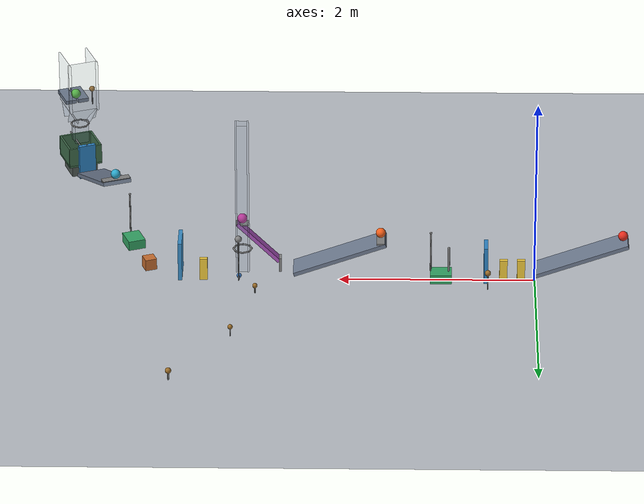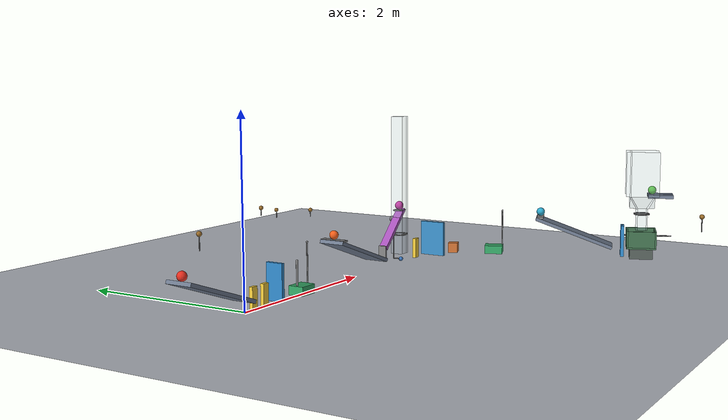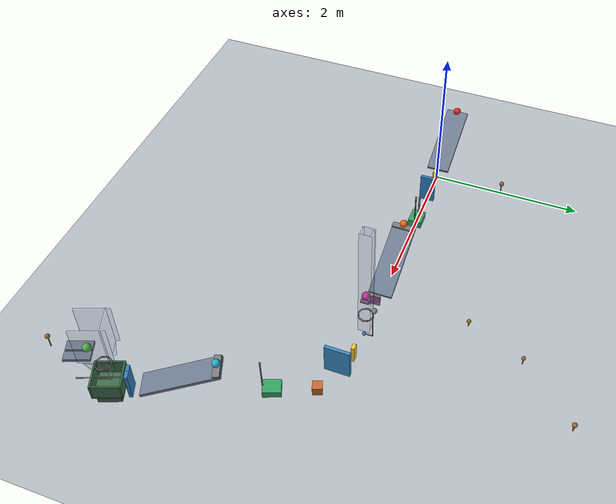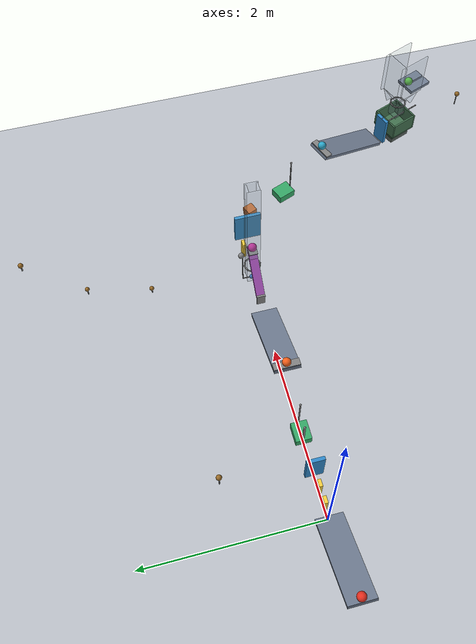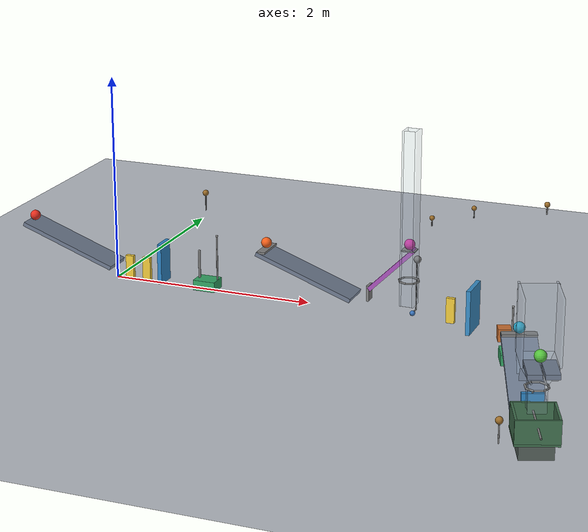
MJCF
<mujoco model="revised_passive_chain">
  <compiler angle="degree" eulerseq="XYZ" autolimits="true"/>
  <!-- Contact override applies friction 0.70 everywhere; soft-contact damping approximates restitution 0.05. -->
  <option timestep="0.002" gravity="0 0 -9.81" integrator="implicitfast" solver="Newton" iterations="100" tolerance="1e-10" cone="elliptic" o_solref="0.004 0.690107" o_solimp="0.95 0.99 0.001" o_friction="0.70 0.70 0.005 0.001 0.001">
    <flag override="enable"/>
  </option>
  <size njmax="2000" nconmax="500"/>

  <worldbody>
    <light name="main_light" pos="2 -3 7" dir="0 0 -1"/>
    <camera name="overview" pos="2 -7 5" xyaxes="1 0 0 0 0.6 0.8" fovy="50"/>
    <geom name="floor" type="plane" pos="0 0 0" size="8 6 0.1" friction="0.70 0.005 0.001" rgba="0.72 0.74 0.77 1"/>

    <!-- Ramp1 top endpoints: (-0.939693, 0, 0.492020) and (0, 0, 0.15). -->
    <body name="ramp1" pos="-0.476686 0 0.302216" euler="0 20 0">
      <geom name="ramp1_surface" type="box" size="0.50 0.15 0.02" rgba="0.43 0.48 0.56 1"/>
    </body>
    <body name="ball1" pos="-0.894401 0 0.528741">
      <freejoint name="ball1_free"/>
      <geom name="ball1_sphere" type="sphere" size="0.05" mass="0.20" condim="6" rgba="0.90 0.18 0.12 1"/>
    </body>
    <body name="domino1" pos="0.14 0 0.12">
      <freejoint name="domino1_free"/>
      <geom name="domino1_box" type="box" size="0.04 0.02 0.12" mass="0.25" rgba="0.94 0.79 0.23 1"/>
    </body>
    <body name="domino2" pos="0.32 0 0.12">
      <freejoint name="domino2_free"/>
      <geom name="domino2_box" type="box" size="0.04 0.02 0.12" mass="0.25" rgba="0.94 0.79 0.23 1"/>
    </body>

    <body name="flap1" pos="0.50 0 0.42">
      <joint name="flap1_hinge" type="hinge" axis="0 -1 0" damping="0.04" range="0 65" solreflimit="0.004 1"/>
      <geom name="flap1_panel" type="box" pos="0 0 -0.20" size="0.02 0.10 0.20" mass="0.30" rgba="0.18 0.52 0.77 1"/>
    </body>

    <!-- Inverted passive counterweights have zero gravitational torque at their initial position. -->
    <body name="flap1_gravity_assist" pos="0.50 1.0 0.45">
      <joint name="flap1_assist_hinge" type="hinge" axis="0 -1 0" damping="0.04" range="0 65" solreflimit="0.004 1"/>
      <geom name="flap1_assist_arm" type="capsule" fromto="0 0 0 0 0 0.18" size="0.006" mass="0.02" contype="0" conaffinity="0"/>
      <geom name="flap1_assist_weight" type="sphere" pos="0 0 0.18" size="0.03" mass="0.98" contype="0" conaffinity="0" rgba="0.60 0.42 0.16 1"/>
    </body>

    <!-- Rear post is now contacted during the final approximately one degree of flap travel. -->
    <body name="cart1" pos="0.96 0 0.055">
      <inertial pos="0 0 0" mass="0.50" diaginertia="0.001766667 0.002433333 0.003366667"/>
      <joint name="cart1_slide" type="slide" axis="1 0 0" damping="0.20" range="0 0.47" solreflimit="0.004 1"/>
      <geom name="cart1_box" type="box" size="0.11 0.09 0.05" density="0" rgba="0.20 0.64 0.39 1"/>
      <geom name="cart1_rear_striker" type="capsule" fromto="-0.080 0 0.06 -0.080 0 0.32" size="0.012" density="0"/>
      <geom name="cart1_front_post" type="capsule" fromto="0.105 0 0.06 0.105 0 0.492" size="0.008" density="0"/>
      <geom name="cart1_ball_pusher" type="sphere" pos="0.105 0 0.492" size="0.012" density="0"/>
    </body>

    <!-- Ball2 is held on a short horizontal ledge until cart1 reaches it at 0.45 m travel. -->
    <body name="ramp2" pos="1.994715 0 0.302216" euler="0 20 0">
      <geom name="ramp2_surface" type="box" size="0.50 0.15 0.02" rgba="0.43 0.48 0.56 1"/>
      <geom name="ramp2_release_ledge" type="box" pos="-0.455725 0 0.030772" euler="0 -20 0" size="0.04 0.15 0.01"/>
    </body>
    <body name="ball2" pos="1.577 0 0.547">
      <freejoint name="ball2_free"/>
      <geom name="ball2_sphere" type="sphere" size="0.05" mass="0.20" condim="6" rgba="0.95 0.37 0.10 1"/>
    </body>

    <!-- Lever begins inclined at 45 degrees and rotates another 45 degrees, lowering its left end. -->
    <body name="lever1" pos="2.825533 0 0.442132" euler="0 -45 0">
      <inertial pos="0 0 0" mass="0.50" diaginertia="0.000483333 0.015066667 0.015416667"/>
      <joint name="lever1_hinge" type="hinge" axis="0 -1 0" damping="0.04" range="0 45" solreflimit="0.004 1"/>
      <geom name="lever1_beam" type="box" size="0.30 0.05 0.02" density="0" contype="2" conaffinity="1" rgba="0.66 0.32 0.73 1"/>
      <geom name="lever1_impact_vane" type="box" pos="-0.335355 0 -0.021213" euler="0 45 0" size="0.012 0.05 0.075" density="0"/>
      <geom name="lever1_launch_cradle" type="box" pos="0.260402 0 0.030401" euler="0 45 0" size="0.065 0.05 0.006" density="0"/>
    </body>
    <body name="lever1_gravity_assist" pos="2.825533 1.2 0.50">
      <joint name="lever1_assist_hinge" type="hinge" axis="0 -1 0" damping="0.04" range="0 45" solreflimit="0.004 1"/>
      <geom name="lever1_assist_arm" type="capsule" fromto="0 0 0 0 0 0.08" size="0.006" mass="0.02" contype="0" conaffinity="0"/>
      <geom name="lever1_assist_weight" type="sphere" pos="0 0 0.08" size="0.025" mass="4.98" contype="0" conaffinity="0" rgba="0.60 0.42 0.16 1"/>
    </body>
    <body name="ball3" pos="2.988168 0 0.703761">
      <freejoint name="ball3_free"/>
      <geom name="ball3_sphere" type="sphere" size="0.05" mass="0.20" contype="4" conaffinity="5" condim="6" rgba="0.78 0.16 0.61 1"/>
    </body>

    <!-- Guide masks allow the lever to pass while constraining the ball's horizontal motion. -->
    <body name="ball3_vertical_guide" pos="2.988168 0 0">
      <geom name="ball3_guide_xminus" type="box" pos="-0.0605 0 0.95" size="0.0075 0.075 0.83" contype="4" conaffinity="0" rgba="0.62 0.70 0.78 0.20"/>
      <geom name="ball3_guide_xplus" type="box" pos="0.0605 0 0.95" size="0.0075 0.075 0.83" contype="4" conaffinity="0" rgba="0.62 0.70 0.78 0.20"/>
      <geom name="ball3_guide_yminus" type="box" pos="0 -0.0605 0.95" size="0.053 0.0075 0.83" contype="4" conaffinity="0" rgba="0.62 0.70 0.78 0.20"/>
      <geom name="ball3_guide_yplus" type="box" pos="0 0.0605 0.95" size="0.053 0.0075 0.83" contype="4" conaffinity="0" rgba="0.62 0.70 0.78 0.20"/>
    </body>

    <!-- Capsule polygons have minimum clear diameter 0.16 m. -->
    <body name="ring1" pos="2.988168 0 0.353761">
      <geom name="ring1_segment0" type="capsule" fromto="0.095249 0 0 0.067351 0.067351 0" size="0.008"/>
      <geom name="ring1_segment1" type="capsule" fromto="0.067351 0.067351 0 0 0.095249 0" size="0.008"/>
      <geom name="ring1_segment2" type="capsule" fromto="0 0.095249 0 -0.067351 0.067351 0" size="0.008"/>
      <geom name="ring1_segment3" type="capsule" fromto="-0.067351 0.067351 0 -0.095249 0 0" size="0.008"/>
      <geom name="ring1_segment4" type="capsule" fromto="-0.095249 0 0 -0.067351 -0.067351 0" size="0.008"/>
      <geom name="ring1_segment5" type="capsule" fromto="-0.067351 -0.067351 0 0 -0.095249 0" size="0.008"/>
      <geom name="ring1_segment6" type="capsule" fromto="0 -0.095249 0 0.067351 -0.067351 0" size="0.008"/>
      <geom name="ring1_segment7" type="capsule" fromto="0.067351 -0.067351 0 0.095249 0 0" size="0.008"/>
    </body>

    <!-- Bob offset supplies a horizontal component to the falling-ball impact. -->
    <body name="pendulum1" pos="3.028168 0 0.540318">
      <joint name="pendulum1_hinge" type="hinge" axis="0 -1 0" damping="0.04" range="0 40" solreflimit="0.004 1"/>
      <geom name="pendulum1_hub" type="sphere" pos="0 0.12 -0.015" size="0.035" mass="0.25"/>
      <geom name="pendulum1_rod" type="capsule" fromto="0 0.105 -0.03 0 0.105 -0.50" size="0.006" mass="0.05"/>
      <geom name="pendulum1_bob_arm" type="capsule" fromto="0 0.105 -0.50 0 0 -0.50" size="0.006" mass="0.005"/>
      <geom name="pendulum1_bob" type="sphere" pos="0 0 -0.50" size="0.025" mass="0.045" rgba="0.22 0.45 0.73 1"/>
    </body>
    <body name="pendulum1_gravity_assist" pos="3.05 1.9 0.40">
      <joint name="pendulum1_assist_hinge" type="hinge" axis="0 -1 0" damping="0.04" range="0 40" solreflimit="0.004 1"/>
      <geom name="pendulum1_assist_arm" type="capsule" fromto="0 0 0 0 0 0.10" size="0.006" mass="0.02" contype="0" conaffinity="0"/>
      <geom name="pendulum1_assist_weight" type="sphere" pos="0 0 0.10" size="0.025" mass="0.98" contype="0" conaffinity="0" rgba="0.60 0.42 0.16 1"/>
    </body>

    <!-- Contact at 0.32 m arc precedes the 40-degree limit; the full 40-degree arc is 0.349 m. -->
    <body name="domino3" pos="3.391766 0 0.12">
      <freejoint name="domino3_free"/>
      <geom name="domino3_box" type="box" size="0.04 0.02 0.12" mass="0.25" rgba="0.94 0.79 0.23 1"/>
    </body>
    <body name="door1" pos="3.631766 -0.27 0.005">
      <joint name="door1_hinge" type="hinge" axis="0 0 -1" damping="0.04" range="0 70" solreflimit="0.004 1"/>
      <geom name="door1_panel" type="box" pos="0 0.16 0.21" size="0.02 0.16 0.21" mass="0.45" rgba="0.22 0.55 0.77 1"/>
    </body>
    <body name="door1_gravity_assist" pos="3.63 2.6 0.30">
      <joint name="door1_assist_hinge" type="hinge" axis="0 -1 0" damping="0.04" range="0 70" solreflimit="0.004 1"/>
      <geom name="door1_assist_arm" type="capsule" fromto="0 0 0 0 0 0.10" size="0.008" mass="0.02" contype="0" conaffinity="0"/>
      <geom name="door1_assist_weight" type="sphere" pos="0 0 0.10" size="0.03" mass="11.98" contype="0" conaffinity="0" rgba="0.60 0.42 0.16 1"/>
    </body>

    <!-- Revised block placement produces contact near 69 degrees, immediately before the door stop. -->
    <body name="block1" pos="3.959181 -0.230009 0.06" euler="0 0 -69">
      <freejoint name="block1_free"/>
      <geom name="block1_cube" type="box" size="0.06 0.06 0.06" mass="0.35" rgba="0.78 0.43 0.19 1"/>
    </body>
    <body name="cart2" pos="4.145533 -0.715471 0.055" euler="0 0 -69">
      <inertial pos="0 0 0" mass="0.50" diaginertia="0.001766667 0.002433333 0.003366667"/>
      <joint name="cart2_slide" type="slide" axis="1 0 0" damping="0.20" range="0 0.44" solreflimit="0.004 1"/>
      <geom name="cart2_box" type="box" size="0.11 0.09 0.05" density="0" rgba="0.20 0.64 0.39 1"/>
      <geom name="cart2_front_post" type="capsule" fromto="0.105 0 0.06 0.105 0 0.492" size="0.008" density="0"/>
      <geom name="cart2_ball_pusher" type="sphere" pos="0.105 0 0.492" size="0.012" density="0"/>
    </body>

    <body name="ramp3" pos="4.505590 -1.653453 0.302216" euler="0 20 -69">
      <geom name="ramp3_surface" type="box" size="0.50 0.15 0.02" rgba="0.43 0.48 0.56 1"/>
      <geom name="ramp3_release_ledge" type="box" pos="-0.455725 0 0.030772" euler="0 -20 0" size="0.04 0.15 0.01"/>
    </body>
    <body name="ball4" pos="4.355894 -1.263482 0.547">
      <freejoint name="ball4_free"/>
      <geom name="ball4_sphere" type="sphere" size="0.05" mass="0.20" condim="6" rgba="0.17 0.66 0.80 1"/>
    </body>

    <body name="flap2" pos="4.719423 -2.210507 0.40" euler="0 0 -69">
      <inertial pos="0 0 -0.19" mass="0.28" diaginertia="0.004125333 0.003406667 0.000793333"/>
      <joint name="flap2_hinge" type="hinge" axis="0 -1 0" damping="0.04" range="0 60" solreflimit="0.004 1"/>
      <geom name="flap2_panel" type="box" pos="0 0 -0.19" size="0.02 0.09 0.19" density="0" rgba="0.18 0.52 0.77 1"/>
      <geom name="flap2_striker_stem" type="capsule" fromto="0 0 0 0 0 -0.121410" size="0.008" density="0"/>
      <geom name="flap2_striker_arm" type="capsule" fromto="0 0 -0.121410 0.589711 0 -0.121410" size="0.008" density="0"/>
      <geom name="flap2_striker_tip" type="sphere" pos="0.589711 0 -0.121410" size="0.008" density="0"/>
    </body>
    <body name="flap2_gravity_assist" pos="4.72 -3.2 0.40">
      <joint name="flap2_assist_hinge" type="hinge" axis="0 -1 0" damping="0.04" range="0 60" solreflimit="0.004 1"/>
      <geom name="flap2_assist_arm" type="capsule" fromto="0 0 0 0 0 0.18" size="0.006" mass="0.02" contype="0" conaffinity="0"/>
      <geom name="flap2_assist_weight" type="sphere" pos="0 0 0.18" size="0.03" mass="0.98" contype="0" conaffinity="0" rgba="0.60 0.42 0.16 1"/>
    </body>

    <!-- Shelf bounding dimensions are 0.30 by 0.25 by 0.04; a central slot clears the striker. -->
    <body name="shelf1" pos="4.880689 -2.630618 0.78" euler="0 0 -69">
      <geom name="shelf1_left_half" type="box" pos="0 0.0675 0" size="0.15 0.0575 0.02" rgba="0.43 0.48 0.56 1"/>
      <geom name="shelf1_right_half" type="box" pos="0 -0.0675 0" size="0.15 0.0575 0.02" rgba="0.43 0.48 0.56 1"/>
    </body>
    <body name="ball5" pos="4.844852 -2.537260 0.848990">
      <freejoint name="ball5_free"/>
      <geom name="ball5_sphere" type="sphere" size="0.05" mass="0.20" conaffinity="5" condim="6" rgba="0.33 0.76 0.24 1"/>
    </body>

    <!-- Capture funnel dissipates the final ball's horizontal strike velocity. -->
    <body name="ball5_capture_guide" pos="4.801848 -2.425231 0" euler="0 0 -69">
      <geom name="ball5_funnel_xplus" type="box" pos="0.104536 0 0.704" euler="0 29.248826 0" size="0.0075 0.15 0.085959" contype="4" conaffinity="0" rgba="0.62 0.70 0.78 0.25"/>
      <geom name="ball5_funnel_xminus" type="box" pos="-0.104536 0 0.704" euler="0 -29.248826 0" size="0.0075 0.15 0.085959" contype="4" conaffinity="0" rgba="0.62 0.70 0.78 0.25"/>
      <geom name="ball5_funnel_yplus" type="box" pos="0 0.104536 0.704" euler="-29.248826 0 0" size="0.15 0.0075 0.085959" contype="4" conaffinity="0" rgba="0.62 0.70 0.78 0.25"/>
      <geom name="ball5_funnel_yminus" type="box" pos="0 -0.104536 0.704" euler="29.248826 0 0" size="0.15 0.0075 0.085959" contype="4" conaffinity="0" rgba="0.62 0.70 0.78 0.25"/>
      <geom name="ball5_guide_xminus" type="box" pos="-0.0605 0 0.49" size="0.0075 0.075 0.139" contype="4" conaffinity="0" rgba="0.62 0.70 0.78 0.20"/>
      <geom name="ball5_guide_xplus" type="box" pos="0.0605 0 0.49" size="0.0075 0.075 0.139" contype="4" conaffinity="0" rgba="0.62 0.70 0.78 0.20"/>
      <geom name="ball5_guide_yminus" type="box" pos="0 -0.0605 0.49" size="0.053 0.0075 0.139" contype="4" conaffinity="0" rgba="0.62 0.70 0.78 0.20"/>
      <geom name="ball5_guide_yplus" type="box" pos="0 0.0605 0.49" size="0.053 0.0075 0.139" contype="4" conaffinity="0" rgba="0.62 0.70 0.78 0.20"/>
      <geom name="ball5_capture_backstop" type="box" pos="-0.1475 0 1.054" size="0.0075 0.16 0.275" contype="4" conaffinity="0" rgba="0.62 0.70 0.78 0.20"/>
      <geom name="ball5_capture_sideplus" type="box" pos="0 0.1475 1.054" size="0.20 0.0075 0.275" contype="4" conaffinity="0" rgba="0.62 0.70 0.78 0.20"/>
      <geom name="ball5_capture_sideminus" type="box" pos="0 -0.1475 1.054" size="0.20 0.0075 0.275" contype="4" conaffinity="0" rgba="0.62 0.70 0.78 0.20"/>
    </body>

    <body name="ring2" pos="4.801848 -2.425231 0.548990">
      <geom name="ring2_segment0" type="capsule" fromto="0.095249 0 0 0.067351 0.067351 0" size="0.008"/>
      <geom name="ring2_segment1" type="capsule" fromto="0.067351 0.067351 0 0 0.095249 0" size="0.008"/>
      <geom name="ring2_segment2" type="capsule" fromto="0 0.095249 0 -0.067351 0.067351 0" size="0.008"/>
      <geom name="ring2_segment3" type="capsule" fromto="-0.067351 0.067351 0 -0.095249 0 0" size="0.008"/>
      <geom name="ring2_segment4" type="capsule" fromto="-0.095249 0 0 -0.067351 -0.067351 0" size="0.008"/>
      <geom name="ring2_segment5" type="capsule" fromto="-0.067351 -0.067351 0 0 -0.095249 0" size="0.008"/>
      <geom name="ring2_segment6" type="capsule" fromto="0 -0.095249 0 0.067351 -0.067351 0" size="0.008"/>
      <geom name="ring2_segment7" type="capsule" fromto="0.067351 -0.067351 0 0.095249 0 0" size="0.008"/>
    </body>

    <!-- Inner footprint 0.32 square, wall height 0.20, wall thickness 0.02. -->
    <body name="bin1" pos="4.801848 -2.425231 0.148990" euler="0 0 -69">
      <geom name="bin1_base" type="box" pos="0 0 -0.01" size="0.18 0.18 0.01" rgba="0.25 0.43 0.30 1"/>
      <geom name="bin1_wall_xplus" type="box" pos="0.17 0 0.10" size="0.01 0.18 0.10" rgba="0.25 0.43 0.30 1"/>
      <geom name="bin1_wall_xminus" type="box" pos="-0.17 0 0.10" size="0.01 0.18 0.10" rgba="0.25 0.43 0.30 1"/>
      <geom name="bin1_wall_yplus" type="box" pos="0 0.17 0.10" size="0.16 0.01 0.10" rgba="0.25 0.43 0.30 1"/>
      <geom name="bin1_wall_yminus" type="box" pos="0 -0.17 0.10" size="0.16 0.01 0.10" rgba="0.25 0.43 0.30 1"/>
      <geom name="bin1_pedestal" type="box" pos="0 0 -0.084495" size="0.14 0.14 0.064495" rgba="0.32 0.36 0.34 1"/>
    </body>
  </worldbody>

  <!-- Ideal passive gear couplings; no actuators or externally applied controls. -->
  <equality>
    <joint name="flap1_assist_coupling" joint1="flap1_hinge" joint2="flap1_assist_hinge" polycoef="0 1 0 0 0" solref="0.004 1"/>
    <joint name="lever1_assist_coupling" joint1="lever1_hinge" joint2="lever1_assist_hinge" polycoef="0 1 0 0 0" solref="0.004 1"/>
    <joint name="pendulum1_assist_coupling" joint1="pendulum1_hinge" joint2="pendulum1_assist_hinge" polycoef="0 1 0 0 0" solref="0.004 1"/>
    <joint name="door1_assist_coupling" joint1="door1_hinge" joint2="door1_assist_hinge" polycoef="0 1 0 0 0" solref="0.004 1"/>
    <joint name="flap2_assist_coupling" joint1="flap2_hinge" joint2="flap2_assist_hinge" polycoef="0 1 0 0 0" solref="0.004 1"/>
  </equality>

  <!-- Default keyframe positions are qpos0 and all default velocities are zero. -->
  <keyframe>
    <key name="start"/>
  </keyframe>
</mujoco>
